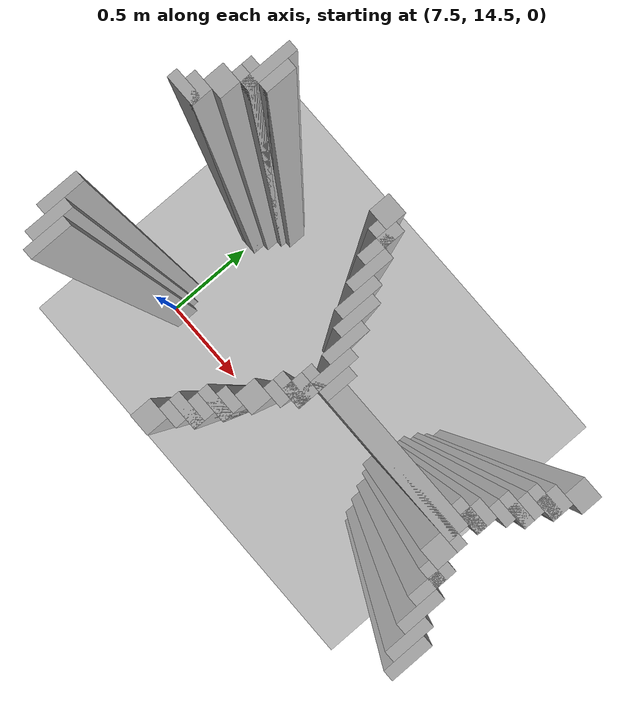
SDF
<sdf version="1.6">
 <world name="slam_world">
  <model name="ground_plane">
   <static>true</static>
   <link name="link">
    <collision name="collision">
     <geometry><plane><normal>0 0 1</normal><size>100 100</size></plane></geometry>
    </collision>
    <visual name="visual">
     <geometry><plane><normal>0 0 1</normal><size>100 100</size></plane></geometry>
     <material>
      <ambient>0.8 0.8 0.8 1</ambient>
      <diffuse>0.8 0.8 0.8 1</diffuse>
      <specular>0.8 0.8 0.8 1</specular>
     </material>
    </visual>
   </link>
  </model>
  <model name="wall_700">
   <static>true</static>
   <pose>7.604408352668213 15.261020881670532 1.0 0 0 0</pose>
   <link name="link">
    <collision name="collision">
     <geometry><box><size>0.03480278422273782 0.17401392111368907 2.0</size></box></geometry>
    </collision>
    <visual name="visual">
     <geometry><box><size>0.03480278422273782 0.17401392111368907 2.0</size></box></geometry>
     <material><ambient>0.5 0.5 0.5 1</ambient><diffuse>0.7 0.7 0.7 1</diffuse></material>
    </visual>
   </link>
  </model>
  <model name="wall_716">
   <static>true</static>
   <pose>7.6392111368909505 15.261020881670532 1.0 0 0 0</pose>
   <link name="link">
    <collision name="collision">
     <geometry><box><size>0.03480278422273782 0.10440835266821345 2.0</size></box></geometry>
    </collision>
    <visual name="visual">
     <geometry><box><size>0.03480278422273782 0.10440835266821345 2.0</size></box></geometry>
     <material><ambient>0.5 0.5 0.5 1</ambient><diffuse>0.7 0.7 0.7 1</diffuse></material>
    </visual>
   </link>
  </model>
  <model name="wall_728">
   <static>true</static>
   <pose>8.109048723897912 15.243619489559164 1.0 0 0 0</pose>
   <link name="link">
    <collision name="collision">
     <geometry><box><size>0.06960556844547564 0.06960556844547564 2.0</size></box></geometry>
    </collision>
    <visual name="visual">
     <geometry><box><size>0.06960556844547564 0.06960556844547564 2.0</size></box></geometry>
     <material><ambient>0.5 0.5 0.5 1</ambient><diffuse>0.7 0.7 0.7 1</diffuse></material>
    </visual>
   </link>
  </model>
  <model name="wall_738">
   <static>true</static>
   <pose>7.604408352668213 15.226218097447795 1.0 0 0 0</pose>
   <link name="link">
    <collision name="collision">
     <geometry><box><size>0.10440835266821345 0.03480278422273782 2.0</size></box></geometry>
    </collision>
    <visual name="visual">
     <geometry><box><size>0.10440835266821345 0.03480278422273782 2.0</size></box></geometry>
     <material><ambient>0.5 0.5 0.5 1</ambient><diffuse>0.7 0.7 0.7 1</diffuse></material>
    </visual>
   </link>
  </model>
  <model name="wall_739">
   <static>true</static>
   <pose>8.161252900232018 15.174013921113689 1.0 0 0 0</pose>
   <link name="link">
    <collision name="collision">
     <geometry><box><size>0.03480278422273782 0.13921113689095127 2.0</size></box></geometry>
    </collision>
    <visual name="visual">
     <geometry><box><size>0.03480278422273782 0.13921113689095127 2.0</size></box></geometry>
     <material><ambient>0.5 0.5 0.5 1</ambient><diffuse>0.7 0.7 0.7 1</diffuse></material>
    </visual>
   </link>
  </model>
  <model name="wall_751">
   <static>true</static>
   <pose>7.587006960556844 15.191415313225058 1.0 0 0 0</pose>
   <link name="link">
    <collision name="collision">
     <geometry><box><size>0.06960556844547564 0.03480278422273782 2.0</size></box></geometry>
    </collision>
    <visual name="visual">
     <geometry><box><size>0.06960556844547564 0.03480278422273782 2.0</size></box></geometry>
     <material><ambient>0.5 0.5 0.5 1</ambient><diffuse>0.7 0.7 0.7 1</diffuse></material>
    </visual>
   </link>
  </model>
  <model name="wall_752">
   <static>true</static>
   <pose>8.14385150812065 15.191415313225058 1.0 0 0 0</pose>
   <link name="link">
    <collision name="collision">
     <geometry><box><size>0.06960556844547564 0.03480278422273782 2.0</size></box></geometry>
    </collision>
    <visual name="visual">
     <geometry><box><size>0.06960556844547564 0.03480278422273782 2.0</size></box></geometry>
     <material><ambient>0.5 0.5 0.5 1</ambient><diffuse>0.7 0.7 0.7 1</diffuse></material>
    </visual>
   </link>
  </model>
  <model name="wall_765">
   <static>true</static>
   <pose>7.552204176334106 15.139211136890951 1.0 0 0 0</pose>
   <link name="link">
    <collision name="collision">
     <geometry><box><size>0.06960556844547564 0.06960556844547564 2.0</size></box></geometry>
    </collision>
    <visual name="visual">
     <geometry><box><size>0.06960556844547564 0.06960556844547564 2.0</size></box></geometry>
     <material><ambient>0.5 0.5 0.5 1</ambient><diffuse>0.7 0.7 0.7 1</diffuse></material>
    </visual>
   </link>
  </model>
  <model name="wall_766">
   <static>true</static>
   <pose>8.196055684454755 15.104408352668212 1.0 0 0 0</pose>
   <link name="link">
    <collision name="collision">
     <geometry><box><size>0.03480278422273782 0.13921113689095127 2.0</size></box></geometry>
    </collision>
    <visual name="visual">
     <geometry><box><size>0.03480278422273782 0.13921113689095127 2.0</size></box></geometry>
     <material><ambient>0.5 0.5 0.5 1</ambient><diffuse>0.7 0.7 0.7 1</diffuse></material>
    </visual>
   </link>
  </model>
  <model name="wall_767">
   <static>true</static>
   <pose>9.013921113689095 15.139211136890951 1.0 0 0 0</pose>
   <link name="link">
    <collision name="collision">
     <geometry><box><size>0.06960556844547564 0.06960556844547564 2.0</size></box></geometry>
    </collision>
    <visual name="visual">
     <geometry><box><size>0.06960556844547564 0.06960556844547564 2.0</size></box></geometry>
     <material><ambient>0.5 0.5 0.5 1</ambient><diffuse>0.7 0.7 0.7 1</diffuse></material>
    </visual>
   </link>
  </model>
  <model name="wall_779">
   <static>true</static>
   <pose>7.517401392111369 15.069605568445475 1.0 0 0 0</pose>
   <link name="link">
    <collision name="collision">
     <geometry><box><size>0.06960556844547564 0.06960556844547564 2.0</size></box></geometry>
    </collision>
    <visual name="visual">
     <geometry><box><size>0.06960556844547564 0.06960556844547564 2.0</size></box></geometry>
     <material><ambient>0.5 0.5 0.5 1</ambient><diffuse>0.7 0.7 0.7 1</diffuse></material>
    </visual>
   </link>
  </model>
  <model name="wall_780">
   <static>true</static>
   <pose>8.230858468677495 15.034802784222737 1.0 0 0 0</pose>
   <link name="link">
    <collision name="collision">
     <geometry><box><size>0.03480278422273782 0.13921113689095127 2.0</size></box></geometry>
    </collision>
    <visual name="visual">
     <geometry><box><size>0.03480278422273782 0.13921113689095127 2.0</size></box></geometry>
     <material><ambient>0.5 0.5 0.5 1</ambient><diffuse>0.7 0.7 0.7 1</diffuse></material>
    </visual>
   </link>
  </model>
  <model name="wall_781">
   <static>true</static>
   <pose>8.979118329466356 15.069605568445475 1.0 0 0 0</pose>
   <link name="link">
    <collision name="collision">
     <geometry><box><size>0.06960556844547564 0.06960556844547564 2.0</size></box></geometry>
    </collision>
    <visual name="visual">
     <geometry><box><size>0.06960556844547564 0.06960556844547564 2.0</size></box></geometry>
     <material><ambient>0.5 0.5 0.5 1</ambient><diffuse>0.7 0.7 0.7 1</diffuse></material>
    </visual>
   </link>
  </model>
  <model name="wall_793">
   <static>true</static>
   <pose>7.5 15.052204176334106 1.0 0 0 0</pose>
   <link name="link">
    <collision name="collision">
     <geometry><box><size>0.10440835266821345 0.03480278422273782 2.0</size></box></geometry>
    </collision>
    <visual name="visual">
     <geometry><box><size>0.10440835266821345 0.03480278422273782 2.0</size></box></geometry>
     <material><ambient>0.5 0.5 0.5 1</ambient><diffuse>0.7 0.7 0.7 1</diffuse></material>
    </visual>
   </link>
  </model>
  <model name="wall_794">
   <static>true</static>
   <pose>8.265661252900232 15.0 1.0 0 0 0</pose>
   <link name="link">
    <collision name="collision">
     <geometry><box><size>0.03480278422273782 0.13921113689095127 2.0</size></box></geometry>
    </collision>
    <visual name="visual">
     <geometry><box><size>0.03480278422273782 0.13921113689095127 2.0</size></box></geometry>
     <material><ambient>0.5 0.5 0.5 1</ambient><diffuse>0.7 0.7 0.7 1</diffuse></material>
    </visual>
   </link>
  </model>
  <model name="wall_795">
   <static>true</static>
   <pose>8.961716937354987 15.052204176334106 1.0 0 0 0</pose>
   <link name="link">
    <collision name="collision">
     <geometry><box><size>0.10440835266821345 0.03480278422273782 2.0</size></box></geometry>
    </collision>
    <visual name="visual">
     <geometry><box><size>0.10440835266821345 0.03480278422273782 2.0</size></box></geometry>
     <material><ambient>0.5 0.5 0.5 1</ambient><diffuse>0.7 0.7 0.7 1</diffuse></material>
    </visual>
   </link>
  </model>
  <model name="wall_807">
   <static>true</static>
   <pose>8.944315545243619 15.0 1.0 0 0 0</pose>
   <link name="link">
    <collision name="collision">
     <geometry><box><size>0.06960556844547564 0.06960556844547564 2.0</size></box></geometry>
    </collision>
    <visual name="visual">
     <geometry><box><size>0.06960556844547564 0.06960556844547564 2.0</size></box></geometry>
     <material><ambient>0.5 0.5 0.5 1</ambient><diffuse>0.7 0.7 0.7 1</diffuse></material>
    </visual>
   </link>
  </model>
  <model name="wall_820">
   <static>true</static>
   <pose>8.30046403712297 14.930394431554523 1.0 0 0 0</pose>
   <link name="link">
    <collision name="collision">
     <geometry><box><size>0.03480278422273782 0.13921113689095127 2.0</size></box></geometry>
    </collision>
    <visual name="visual">
     <geometry><box><size>0.03480278422273782 0.13921113689095127 2.0</size></box></geometry>
     <material><ambient>0.5 0.5 0.5 1</ambient><diffuse>0.7 0.7 0.7 1</diffuse></material>
    </visual>
   </link>
  </model>
  <model name="wall_821">
   <static>true</static>
   <pose>8.92691415313225 14.982598607888631 1.0 0 0 0</pose>
   <link name="link">
    <collision name="collision">
     <geometry><box><size>0.10440835266821345 0.03480278422273782 2.0</size></box></geometry>
    </collision>
    <visual name="visual">
     <geometry><box><size>0.10440835266821345 0.03480278422273782 2.0</size></box></geometry>
     <material><ambient>0.5 0.5 0.5 1</ambient><diffuse>0.7 0.7 0.7 1</diffuse></material>
    </visual>
   </link>
  </model>
  <model name="wall_831">
   <static>true</static>
   <pose>8.909512761020881 14.947795823665892 1.0 0 0 0</pose>
   <link name="link">
    <collision name="collision">
     <geometry><box><size>0.06960556844547564 0.03480278422273782 2.0</size></box></geometry>
    </collision>
    <visual name="visual">
     <geometry><box><size>0.06960556844547564 0.03480278422273782 2.0</size></box></geometry>
     <material><ambient>0.5 0.5 0.5 1</ambient><diffuse>0.7 0.7 0.7 1</diffuse></material>
    </visual>
   </link>
  </model>
  <model name="wall_842">
   <static>true</static>
   <pose>8.335266821345707 14.825986078886311 1.0 0 0 0</pose>
   <link name="link">
    <collision name="collision">
     <geometry><box><size>0.03480278422273782 0.2088167053364269 2.0</size></box></geometry>
    </collision>
    <visual name="visual">
     <geometry><box><size>0.03480278422273782 0.2088167053364269 2.0</size></box></geometry>
     <material><ambient>0.5 0.5 0.5 1</ambient><diffuse>0.7 0.7 0.7 1</diffuse></material>
    </visual>
   </link>
  </model>
  <model name="wall_843">
   <static>true</static>
   <pose>8.874709976798144 14.895591647331786 1.0 0 0 0</pose>
   <link name="link">
    <collision name="collision">
     <geometry><box><size>0.06960556844547564 0.06960556844547564 2.0</size></box></geometry>
    </collision>
    <visual name="visual">
     <geometry><box><size>0.06960556844547564 0.06960556844547564 2.0</size></box></geometry>
     <material><ambient>0.5 0.5 0.5 1</ambient><diffuse>0.7 0.7 0.7 1</diffuse></material>
    </visual>
   </link>
  </model>
  <model name="wall_851">
   <static>true</static>
   <pose>8.370069605568444 14.84338747099768 1.0 0 0 0</pose>
   <link name="link">
    <collision name="collision">
     <geometry><box><size>0.03480278422273782 0.10440835266821345 2.0</size></box></geometry>
    </collision>
    <visual name="visual">
     <geometry><box><size>0.03480278422273782 0.10440835266821345 2.0</size></box></geometry>
     <material><ambient>0.5 0.5 0.5 1</ambient><diffuse>0.7 0.7 0.7 1</diffuse></material>
    </visual>
   </link>
  </model>
  <model name="wall_852">
   <static>true</static>
   <pose>8.857308584686775 14.878190255220417 1.0 0 0 0</pose>
   <link name="link">
    <collision name="collision">
     <geometry><box><size>0.10440835266821345 0.03480278422273782 2.0</size></box></geometry>
    </collision>
    <visual name="visual">
     <geometry><box><size>0.10440835266821345 0.03480278422273782 2.0</size></box></geometry>
     <material><ambient>0.5 0.5 0.5 1</ambient><diffuse>0.7 0.7 0.7 1</diffuse></material>
    </visual>
   </link>
  </model>
  <model name="wall_864">
   <static>true</static>
   <pose>8.631090487238978 14.825986078886311 1.0 0 0 0</pose>
   <link name="link">
    <collision name="collision">
     <geometry><box><size>0.4872389791183295 0.06960556844547564 2.0</size></box></geometry>
    </collision>
    <visual name="visual">
     <geometry><box><size>0.4872389791183295 0.06960556844547564 2.0</size></box></geometry>
     <material><ambient>0.5 0.5 0.5 1</ambient><diffuse>0.7 0.7 0.7 1</diffuse></material>
    </visual>
   </link>
  </model>
  <model name="wall_877">
   <static>true</static>
   <pose>8.596287703016241 14.80858468677494 1.0 0 0 0</pose>
   <link name="link">
    <collision name="collision">
     <geometry><box><size>0.6264501160092807 0.03480278422273782 2.0</size></box></geometry>
    </collision>
    <visual name="visual">
     <geometry><box><size>0.6264501160092807 0.03480278422273782 2.0</size></box></geometry>
     <material><ambient>0.5 0.5 0.5 1</ambient><diffuse>0.7 0.7 0.7 1</diffuse></material>
    </visual>
   </link>
  </model>
  <model name="wall_890">
   <static>true</static>
   <pose>8.317865429234338 14.756380510440835 1.0 0 0 0</pose>
   <link name="link">
    <collision name="collision">
     <geometry><box><size>0.06960556844547564 0.06960556844547564 2.0</size></box></geometry>
    </collision>
    <visual name="visual">
     <geometry><box><size>0.06960556844547564 0.06960556844547564 2.0</size></box></geometry>
     <material><ambient>0.5 0.5 0.5 1</ambient><diffuse>0.7 0.7 0.7 1</diffuse></material>
    </visual>
   </link>
  </model>
  <model name="wall_891">
   <static>true</static>
   <pose>8.874709976798144 14.756380510440835 1.0 0 0 0</pose>
   <link name="link">
    <collision name="collision">
     <geometry><box><size>0.06960556844547564 0.06960556844547564 2.0</size></box></geometry>
    </collision>
    <visual name="visual">
     <geometry><box><size>0.06960556844547564 0.06960556844547564 2.0</size></box></geometry>
     <material><ambient>0.5 0.5 0.5 1</ambient><diffuse>0.7 0.7 0.7 1</diffuse></material>
    </visual>
   </link>
  </model>
  <model name="wall_906">
   <static>true</static>
   <pose>8.30046403712297 14.738979118329466 1.0 0 0 0</pose>
   <link name="link">
    <collision name="collision">
     <geometry><box><size>0.10440835266821345 0.03480278422273782 2.0</size></box></geometry>
    </collision>
    <visual name="visual">
     <geometry><box><size>0.10440835266821345 0.03480278422273782 2.0</size></box></geometry>
     <material><ambient>0.5 0.5 0.5 1</ambient><diffuse>0.7 0.7 0.7 1</diffuse></material>
    </visual>
   </link>
  </model>
  <model name="wall_907">
   <static>true</static>
   <pose>8.92691415313225 14.68677494199536 1.0 0 0 0</pose>
   <link name="link">
    <collision name="collision">
     <geometry><box><size>0.03480278422273782 0.13921113689095127 2.0</size></box></geometry>
    </collision>
    <visual name="visual">
     <geometry><box><size>0.03480278422273782 0.13921113689095127 2.0</size></box></geometry>
     <material><ambient>0.5 0.5 0.5 1</ambient><diffuse>0.7 0.7 0.7 1</diffuse></material>
    </visual>
   </link>
  </model>
  <model name="wall_919">
   <static>true</static>
   <pose>8.2830626450116 14.704176334106728 1.0 0 0 0</pose>
   <link name="link">
    <collision name="collision">
     <geometry><box><size>0.06960556844547564 0.03480278422273782 2.0</size></box></geometry>
    </collision>
    <visual name="visual">
     <geometry><box><size>0.06960556844547564 0.03480278422273782 2.0</size></box></geometry>
     <material><ambient>0.5 0.5 0.5 1</ambient><diffuse>0.7 0.7 0.7 1</diffuse></material>
    </visual>
   </link>
  </model>
  <model name="wall_920">
   <static>true</static>
   <pose>8.909512761020881 14.704176334106728 1.0 0 0 0</pose>
   <link name="link">
    <collision name="collision">
     <geometry><box><size>0.06960556844547564 0.03480278422273782 2.0</size></box></geometry>
    </collision>
    <visual name="visual">
     <geometry><box><size>0.06960556844547564 0.03480278422273782 2.0</size></box></geometry>
     <material><ambient>0.5 0.5 0.5 1</ambient><diffuse>0.7 0.7 0.7 1</diffuse></material>
    </visual>
   </link>
  </model>
  <model name="wall_932">
   <static>true</static>
   <pose>7.5 14.617169373549883 1.0 0 0 0</pose>
   <link name="link">
    <collision name="collision">
     <geometry><box><size>0.03480278422273782 0.13921113689095127 2.0</size></box></geometry>
    </collision>
    <visual name="visual">
     <geometry><box><size>0.03480278422273782 0.13921113689095127 2.0</size></box></geometry>
     <material><ambient>0.5 0.5 0.5 1</ambient><diffuse>0.7 0.7 0.7 1</diffuse></material>
    </visual>
   </link>
  </model>
  <model name="wall_933">
   <static>true</static>
   <pose>8.248259860788863 14.65197215777262 1.0 0 0 0</pose>
   <link name="link">
    <collision name="collision">
     <geometry><box><size>0.06960556844547564 0.06960556844547564 2.0</size></box></geometry>
    </collision>
    <visual name="visual">
     <geometry><box><size>0.06960556844547564 0.06960556844547564 2.0</size></box></geometry>
     <material><ambient>0.5 0.5 0.5 1</ambient><diffuse>0.7 0.7 0.7 1</diffuse></material>
    </visual>
   </link>
  </model>
  <model name="wall_934">
   <static>true</static>
   <pose>8.961716937354987 14.617169373549883 1.0 0 0 0</pose>
   <link name="link">
    <collision name="collision">
     <geometry><box><size>0.03480278422273782 0.13921113689095127 2.0</size></box></geometry>
    </collision>
    <visual name="visual">
     <geometry><box><size>0.03480278422273782 0.13921113689095127 2.0</size></box></geometry>
     <material><ambient>0.5 0.5 0.5 1</ambient><diffuse>0.7 0.7 0.7 1</diffuse></material>
    </visual>
   </link>
  </model>
  <model name="wall_948">
   <static>true</static>
   <pose>7.534802784222737 14.547563805104408 1.0 0 0 0</pose>
   <link name="link">
    <collision name="collision">
     <geometry><box><size>0.03480278422273782 0.13921113689095127 2.0</size></box></geometry>
    </collision>
    <visual name="visual">
     <geometry><box><size>0.03480278422273782 0.13921113689095127 2.0</size></box></geometry>
     <material><ambient>0.5 0.5 0.5 1</ambient><diffuse>0.7 0.7 0.7 1</diffuse></material>
    </visual>
   </link>
  </model>
  <model name="wall_949">
   <static>true</static>
   <pose>8.213457076566124 14.582366589327146 1.0 0 0 0</pose>
   <link name="link">
    <collision name="collision">
     <geometry><box><size>0.06960556844547564 0.06960556844547564 2.0</size></box></geometry>
    </collision>
    <visual name="visual">
     <geometry><box><size>0.06960556844547564 0.06960556844547564 2.0</size></box></geometry>
     <material><ambient>0.5 0.5 0.5 1</ambient><diffuse>0.7 0.7 0.7 1</diffuse></material>
    </visual>
   </link>
  </model>
  <model name="wall_950">
   <static>true</static>
   <pose>8.996519721577727 14.547563805104408 1.0 0 0 0</pose>
   <link name="link">
    <collision name="collision">
     <geometry><box><size>0.03480278422273782 0.13921113689095127 2.0</size></box></geometry>
    </collision>
    <visual name="visual">
     <geometry><box><size>0.03480278422273782 0.13921113689095127 2.0</size></box></geometry>
     <material><ambient>0.5 0.5 0.5 1</ambient><diffuse>0.7 0.7 0.7 1</diffuse></material>
    </visual>
   </link>
  </model>
  <model name="wall_964">
   <static>true</static>
   <pose>7.569605568445476 14.512761020881669 1.0 0 0 0</pose>
   <link name="link">
    <collision name="collision">
     <geometry><box><size>0.03480278422273782 0.13921113689095127 2.0</size></box></geometry>
    </collision>
    <visual name="visual">
     <geometry><box><size>0.03480278422273782 0.13921113689095127 2.0</size></box></geometry>
     <material><ambient>0.5 0.5 0.5 1</ambient><diffuse>0.7 0.7 0.7 1</diffuse></material>
    </visual>
   </link>
  </model>
  <model name="wall_965">
   <static>true</static>
   <pose>8.196055684454755 14.564965197215777 1.0 0 0 0</pose>
   <link name="link">
    <collision name="collision">
     <geometry><box><size>0.10440835266821345 0.03480278422273782 2.0</size></box></geometry>
    </collision>
    <visual name="visual">
     <geometry><box><size>0.10440835266821345 0.03480278422273782 2.0</size></box></geometry>
     <material><ambient>0.5 0.5 0.5 1</ambient><diffuse>0.7 0.7 0.7 1</diffuse></material>
    </visual>
   </link>
  </model>
  <model name="wall_966">
   <static>true</static>
   <pose>9.031322505800464 14.512761020881669 1.0 0 0 0</pose>
   <link name="link">
    <collision name="collision">
     <geometry><box><size>0.03480278422273782 0.13921113689095127 2.0</size></box></geometry>
    </collision>
    <visual name="visual">
     <geometry><box><size>0.03480278422273782 0.13921113689095127 2.0</size></box></geometry>
     <material><ambient>0.5 0.5 0.5 1</ambient><diffuse>0.7 0.7 0.7 1</diffuse></material>
    </visual>
   </link>
  </model>
  <model name="wall_977">
   <static>true</static>
   <pose>8.178654292343387 14.512761020881669 1.0 0 0 0</pose>
   <link name="link">
    <collision name="collision">
     <geometry><box><size>0.06960556844547564 0.06960556844547564 2.0</size></box></geometry>
    </collision>
    <visual name="visual">
     <geometry><box><size>0.06960556844547564 0.06960556844547564 2.0</size></box></geometry>
     <material><ambient>0.5 0.5 0.5 1</ambient><diffuse>0.7 0.7 0.7 1</diffuse></material>
    </visual>
   </link>
  </model>
  <model name="wall_988">
   <static>true</static>
   <pose>8.161252900232018 14.4953596287703 1.0 0 0 0</pose>
   <link name="link">
    <collision name="collision">
     <geometry><box><size>0.10440835266821345 0.03480278422273782 2.0</size></box></geometry>
    </collision>
    <visual name="visual">
     <geometry><box><size>0.10440835266821345 0.03480278422273782 2.0</size></box></geometry>
     <material><ambient>0.5 0.5 0.5 1</ambient><diffuse>0.7 0.7 0.7 1</diffuse></material>
    </visual>
   </link>
  </model>
  <model name="wall_1000">
   <static>true</static>
   <pose>8.14385150812065 14.460556844547563 1.0 0 0 0</pose>
   <link name="link">
    <collision name="collision">
     <geometry><box><size>0.06960556844547564 0.03480278422273782 2.0</size></box></geometry>
    </collision>
    <visual name="visual">
     <geometry><box><size>0.06960556844547564 0.03480278422273782 2.0</size></box></geometry>
     <material><ambient>0.5 0.5 0.5 1</ambient><diffuse>0.7 0.7 0.7 1</diffuse></material>
    </visual>
   </link>
  </model>
  <model name="wall_1010">
   <static>true</static>
   <pose>8.109048723897912 14.408352668213457 1.0 0 0 0</pose>
   <link name="link">
    <collision name="collision">
     <geometry><box><size>0.06960556844547564 0.06960556844547564 2.0</size></box></geometry>
    </collision>
    <visual name="visual">
     <geometry><box><size>0.06960556844547564 0.06960556844547564 2.0</size></box></geometry>
     <material><ambient>0.5 0.5 0.5 1</ambient><diffuse>0.7 0.7 0.7 1</diffuse></material>
    </visual>
   </link>
  </model>
 </world>
</sdf>
